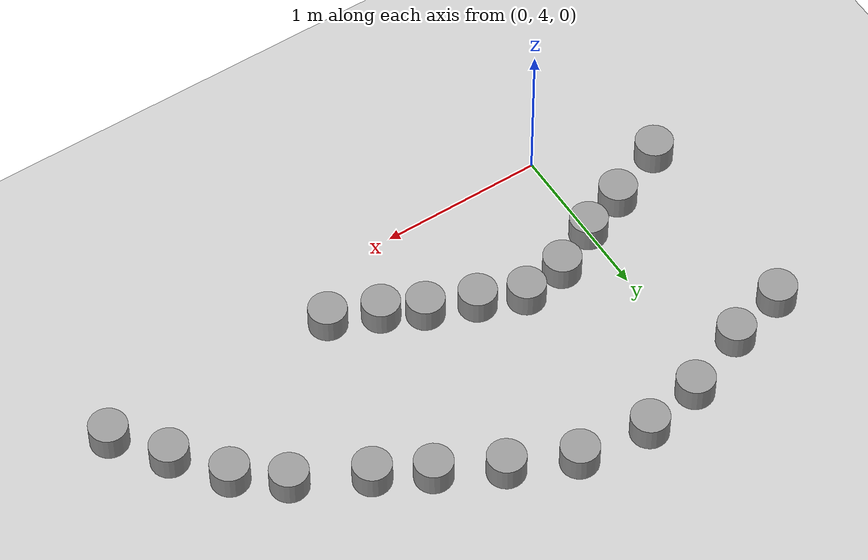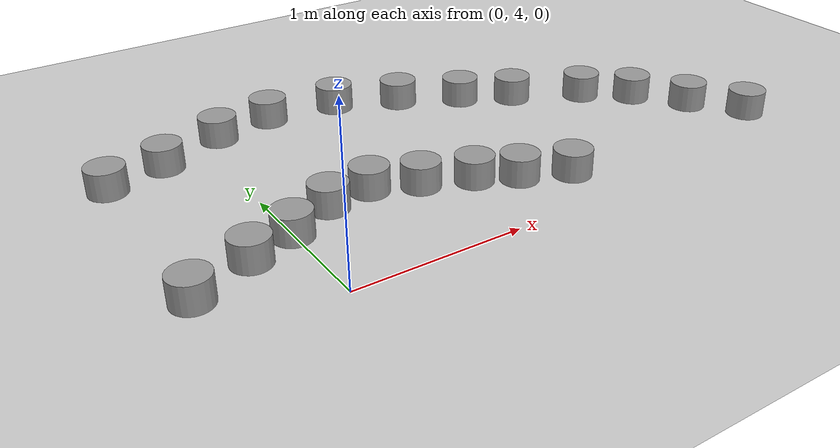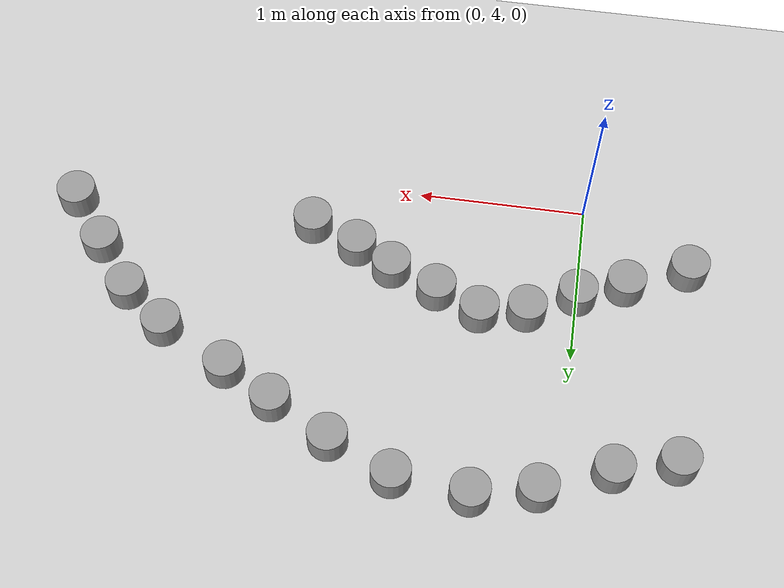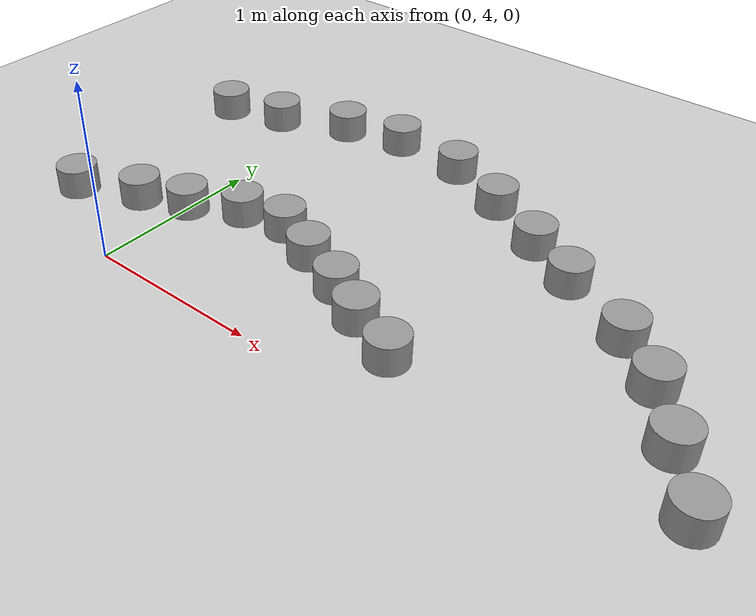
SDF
<sdf version="1.6">
 <world name="default">
  <model name="ground_plane">
   <static>1</static>
   <link name="link">
    <collision name="collision">
     <geometry><plane><normal>0 0 1</normal><size>100 100</size></plane></geometry>
     <surface>
      <contact><collide_bitmask>65535</collide_bitmask></contact>
      <friction><ode><mu>100</mu><mu2>50</mu2></ode></friction>
     </surface>
    </collision>
    <visual name="visual">
     <cast_shadows>0</cast_shadows>
     <geometry><plane><normal>0 0 1</normal><size>100 100</size></plane></geometry>
     <material>
      <script><uri>file://media/materials/scripts/gazebo.material</uri><name>Gazebo/Grey</name></script>
     </material>
    </visual>
   </link>
  </model>
  <model name="pillar_clone_36_clone_4">
   <link name="link_0">
    <inertial>
     <mass>0.0172437</mass>
     <inertia>
      <ixx>0.000207925</ixx>
      <ixy>0</ixy>
      <ixz>0</ixz>
      <iyy>0.000207925</iyy>
      <iyz>0</iyz>
      <izz>0.000114861</izz>
     </inertia>
    </inertial>
    <pose>2e-06 -0 0 0 -0 0</pose>
    <visual name="visual">
     <geometry><cylinder><radius>0.115422</radius><length>0.32362</length></cylinder></geometry>
     <material>
      <lighting>1</lighting>
      <script><uri>file://media/materials/scripts/gazebo.material</uri><name>Gazebo/Grey</name></script>
      <shader type="vertex"><normal_map>__default__</normal_map></shader>
     </material>
    </visual>
    <collision name="collision">
     <geometry><cylinder><radius>0.115422</radius><length>0.32362</length></cylinder></geometry>
     <surface>
      <friction>
       <ode><mu>1</mu><mu2>1</mu2><fdir1>0 0 0</fdir1><slip1>0</slip1><slip2>0</slip2></ode>
       <torsional>
        <coefficient>1</coefficient>
        <patch_radius>0</patch_radius>
        <surface_radius>0</surface_radius>
        <use_patch_radius>1</use_patch_radius>
        <ode><slip>0</slip></ode>
       </torsional>
      </friction>
      <bounce><restitution_coefficient>0</restitution_coefficient><threshold>1e+06</threshold></bounce>
      <contact>
       <collide_without_contact>0</collide_without_contact>
       <collide_without_contact_bitmask>1</collide_without_contact_bitmask>
       <collide_bitmask>1</collide_bitmask>
       <ode>
        <soft_cfm>0</soft_cfm>
        <soft_erp>0.2</soft_erp>
        <kp>1e+13</kp>
        <kd>1</kd>
        <max_vel>0.01</max_vel>
        <min_depth>0</min_depth>
       </ode>
       <bullet>
        <split_impulse>1</split_impulse>
        <split_impulse_penetration_threshold>-0.01</split_impulse_penetration_threshold>
        <soft_cfm>0</soft_cfm>
        <soft_erp>0.2</soft_erp>
        <kp>1e+13</kp>
        <kd>1</kd>
       </bullet>
      </contact>
     </surface>
    </collision>
   </link>
   <static>1</static>
   <pose>0.488108 5.92745 0 0 -0 0</pose>
  </model>
  <model name="pillar_clone_36_clone_5">
   <link name="link_0">
    <inertial>
     <mass>0.0172437</mass>
     <inertia>
      <ixx>0.000207925</ixx>
      <ixy>0</ixy>
      <ixz>0</ixz>
      <iyy>0.000207925</iyy>
      <iyz>0</iyz>
      <izz>0.000114861</izz>
     </inertia>
    </inertial>
    <pose>2e-06 -0 0 0 -0 0</pose>
    <visual name="visual">
     <geometry><cylinder><radius>0.115422</radius><length>0.32362</length></cylinder></geometry>
     <material>
      <lighting>1</lighting>
      <script><uri>file://media/materials/scripts/gazebo.material</uri><name>Gazebo/Grey</name></script>
      <shader type="vertex"><normal_map>__default__</normal_map></shader>
     </material>
    </visual>
    <collision name="collision">
     <geometry><cylinder><radius>0.115422</radius><length>0.32362</length></cylinder></geometry>
     <surface>
      <friction>
       <ode><mu>1</mu><mu2>1</mu2><fdir1>0 0 0</fdir1><slip1>0</slip1><slip2>0</slip2></ode>
       <torsional>
        <coefficient>1</coefficient>
        <patch_radius>0</patch_radius>
        <surface_radius>0</surface_radius>
        <use_patch_radius>1</use_patch_radius>
        <ode><slip>0</slip></ode>
       </torsional>
      </friction>
      <bounce><restitution_coefficient>0</restitution_coefficient><threshold>1e+06</threshold></bounce>
      <contact>
       <collide_without_contact>0</collide_without_contact>
       <collide_without_contact_bitmask>1</collide_without_contact_bitmask>
       <collide_bitmask>1</collide_bitmask>
       <ode>
        <soft_cfm>0</soft_cfm>
        <soft_erp>0.2</soft_erp>
        <kp>1e+13</kp>
        <kd>1</kd>
        <max_vel>0.01</max_vel>
        <min_depth>0</min_depth>
       </ode>
       <bullet>
        <split_impulse>1</split_impulse>
        <split_impulse_penetration_threshold>-0.01</split_impulse_penetration_threshold>
        <soft_cfm>0</soft_cfm>
        <soft_erp>0.2</soft_erp>
        <kp>1e+13</kp>
        <kd>1</kd>
       </bullet>
      </contact>
     </surface>
    </collision>
   </link>
   <static>1</static>
   <pose>0.931547 5.88101 0 0 -0 0</pose>
  </model>
  <model name="pillar_clone_36_clone_6">
   <link name="link_0">
    <inertial>
     <mass>0.0172437</mass>
     <inertia>
      <ixx>0.000207925</ixx>
      <ixy>0</ixy>
      <ixz>0</ixz>
      <iyy>0.000207925</iyy>
      <iyz>0</iyz>
      <izz>0.000114861</izz>
     </inertia>
    </inertial>
    <pose>2e-06 -0 0 0 -0 0</pose>
    <visual name="visual">
     <geometry><cylinder><radius>0.115422</radius><length>0.32362</length></cylinder></geometry>
     <material>
      <lighting>1</lighting>
      <script><uri>file://media/materials/scripts/gazebo.material</uri><name>Gazebo/Grey</name></script>
      <shader type="vertex"><normal_map>__default__</normal_map></shader>
     </material>
    </visual>
    <collision name="collision">
     <geometry><cylinder><radius>0.115422</radius><length>0.32362</length></cylinder></geometry>
     <surface>
      <friction>
       <ode><mu>1</mu><mu2>1</mu2><fdir1>0 0 0</fdir1><slip1>0</slip1><slip2>0</slip2></ode>
       <torsional>
        <coefficient>1</coefficient>
        <patch_radius>0</patch_radius>
        <surface_radius>0</surface_radius>
        <use_patch_radius>1</use_patch_radius>
        <ode><slip>0</slip></ode>
       </torsional>
      </friction>
      <bounce><restitution_coefficient>0</restitution_coefficient><threshold>1e+06</threshold></bounce>
      <contact>
       <collide_without_contact>0</collide_without_contact>
       <collide_without_contact_bitmask>1</collide_without_contact_bitmask>
       <collide_bitmask>1</collide_bitmask>
       <ode>
        <soft_cfm>0</soft_cfm>
        <soft_erp>0.2</soft_erp>
        <kp>1e+13</kp>
        <kd>1</kd>
        <max_vel>0.01</max_vel>
        <min_depth>0</min_depth>
       </ode>
       <bullet>
        <split_impulse>1</split_impulse>
        <split_impulse_penetration_threshold>-0.01</split_impulse_penetration_threshold>
        <soft_cfm>0</soft_cfm>
        <soft_erp>0.2</soft_erp>
        <kp>1e+13</kp>
        <kd>1</kd>
       </bullet>
      </contact>
     </surface>
    </collision>
   </link>
   <static>1</static>
   <pose>1.31132 5.71151 0 0 -0 0</pose>
  </model>
  <model name="pillar_clone_36_clone_7">
   <link name="link_0">
    <inertial>
     <mass>0.0172437</mass>
     <inertia>
      <ixx>0.000207925</ixx>
      <ixy>0</ixy>
      <ixz>0</ixz>
      <iyy>0.000207925</iyy>
      <iyz>0</iyz>
      <izz>0.000114861</izz>
     </inertia>
    </inertial>
    <pose>2e-06 -0 0 0 -0 0</pose>
    <visual name="visual">
     <geometry><cylinder><radius>0.115422</radius><length>0.32362</length></cylinder></geometry>
     <material>
      <lighting>1</lighting>
      <script><uri>file://media/materials/scripts/gazebo.material</uri><name>Gazebo/Grey</name></script>
      <shader type="vertex"><normal_map>__default__</normal_map></shader>
     </material>
    </visual>
    <collision name="collision">
     <geometry><cylinder><radius>0.115422</radius><length>0.32362</length></cylinder></geometry>
     <surface>
      <friction>
       <ode><mu>1</mu><mu2>1</mu2><fdir1>0 0 0</fdir1><slip1>0</slip1><slip2>0</slip2></ode>
       <torsional>
        <coefficient>1</coefficient>
        <patch_radius>0</patch_radius>
        <surface_radius>0</surface_radius>
        <use_patch_radius>1</use_patch_radius>
        <ode><slip>0</slip></ode>
       </torsional>
      </friction>
      <bounce><restitution_coefficient>0</restitution_coefficient><threshold>1e+06</threshold></bounce>
      <contact>
       <collide_without_contact>0</collide_without_contact>
       <collide_without_contact_bitmask>1</collide_without_contact_bitmask>
       <collide_bitmask>1</collide_bitmask>
       <ode>
        <soft_cfm>0</soft_cfm>
        <soft_erp>0.2</soft_erp>
        <kp>1e+13</kp>
        <kd>1</kd>
        <max_vel>0.01</max_vel>
        <min_depth>0</min_depth>
       </ode>
       <bullet>
        <split_impulse>1</split_impulse>
        <split_impulse_penetration_threshold>-0.01</split_impulse_penetration_threshold>
        <soft_cfm>0</soft_cfm>
        <soft_erp>0.2</soft_erp>
        <kp>1e+13</kp>
        <kd>1</kd>
       </bullet>
      </contact>
     </surface>
    </collision>
   </link>
   <static>1</static>
   <pose>1.66938 5.51752 0 0 -0 0</pose>
  </model>
  <model name="pillar_clone_36_clone_8">
   <link name="link_0">
    <inertial>
     <mass>0.0172437</mass>
     <inertia>
      <ixx>0.000207925</ixx>
      <ixy>0</ixy>
      <ixz>0</ixz>
      <iyy>0.000207925</iyy>
      <iyz>0</iyz>
      <izz>0.000114861</izz>
     </inertia>
    </inertial>
    <pose>2e-06 -0 0 0 -0 0</pose>
    <visual name="visual">
     <geometry><cylinder><radius>0.115422</radius><length>0.32362</length></cylinder></geometry>
     <material>
      <lighting>1</lighting>
      <script><uri>file://media/materials/scripts/gazebo.material</uri><name>Gazebo/Grey</name></script>
      <shader type="vertex"><normal_map>__default__</normal_map></shader>
     </material>
    </visual>
    <collision name="collision">
     <geometry><cylinder><radius>0.115422</radius><length>0.32362</length></cylinder></geometry>
     <surface>
      <friction>
       <ode><mu>1</mu><mu2>1</mu2><fdir1>0 0 0</fdir1><slip1>0</slip1><slip2>0</slip2></ode>
       <torsional>
        <coefficient>1</coefficient>
        <patch_radius>0</patch_radius>
        <surface_radius>0</surface_radius>
        <use_patch_radius>1</use_patch_radius>
        <ode><slip>0</slip></ode>
       </torsional>
      </friction>
      <bounce><restitution_coefficient>0</restitution_coefficient><threshold>1e+06</threshold></bounce>
      <contact>
       <collide_without_contact>0</collide_without_contact>
       <collide_without_contact_bitmask>1</collide_without_contact_bitmask>
       <collide_bitmask>1</collide_bitmask>
       <ode>
        <soft_cfm>0</soft_cfm>
        <soft_erp>0.2</soft_erp>
        <kp>1e+13</kp>
        <kd>1</kd>
        <max_vel>0.01</max_vel>
        <min_depth>0</min_depth>
       </ode>
       <bullet>
        <split_impulse>1</split_impulse>
        <split_impulse_penetration_threshold>-0.01</split_impulse_penetration_threshold>
        <soft_cfm>0</soft_cfm>
        <soft_erp>0.2</soft_erp>
        <kp>1e+13</kp>
        <kd>1</kd>
       </bullet>
      </contact>
     </surface>
    </collision>
   </link>
   <static>1</static>
   <pose>1.96808 5.34849 0 0 -0 0</pose>
  </model>
  <model name="pillar_clone_36_clone_9">
   <link name="link_0">
    <inertial>
     <mass>0.0172437</mass>
     <inertia>
      <ixx>0.000207925</ixx>
      <ixy>0</ixy>
      <ixz>0</ixz>
      <iyy>0.000207925</iyy>
      <iyz>0</iyz>
      <izz>0.000114861</izz>
     </inertia>
    </inertial>
    <pose>2e-06 -0 0 0 -0 0</pose>
    <visual name="visual">
     <geometry><cylinder><radius>0.115422</radius><length>0.32362</length></cylinder></geometry>
     <material>
      <lighting>1</lighting>
      <script><uri>file://media/materials/scripts/gazebo.material</uri><name>Gazebo/Grey</name></script>
      <shader type="vertex"><normal_map>__default__</normal_map></shader>
     </material>
    </visual>
    <collision name="collision">
     <geometry><cylinder><radius>0.115422</radius><length>0.32362</length></cylinder></geometry>
     <surface>
      <friction>
       <ode><mu>1</mu><mu2>1</mu2><fdir1>0 0 0</fdir1><slip1>0</slip1><slip2>0</slip2></ode>
       <torsional>
        <coefficient>1</coefficient>
        <patch_radius>0</patch_radius>
        <surface_radius>0</surface_radius>
        <use_patch_radius>1</use_patch_radius>
        <ode><slip>0</slip></ode>
       </torsional>
      </friction>
      <bounce><restitution_coefficient>0</restitution_coefficient><threshold>1e+06</threshold></bounce>
      <contact>
       <collide_without_contact>0</collide_without_contact>
       <collide_without_contact_bitmask>1</collide_without_contact_bitmask>
       <collide_bitmask>1</collide_bitmask>
       <ode>
        <soft_cfm>0</soft_cfm>
        <soft_erp>0.2</soft_erp>
        <kp>1e+13</kp>
        <kd>1</kd>
        <max_vel>0.01</max_vel>
        <min_depth>0</min_depth>
       </ode>
       <bullet>
        <split_impulse>1</split_impulse>
        <split_impulse_penetration_threshold>-0.01</split_impulse_penetration_threshold>
        <soft_cfm>0</soft_cfm>
        <soft_erp>0.2</soft_erp>
        <kp>1e+13</kp>
        <kd>1</kd>
       </bullet>
      </contact>
     </surface>
    </collision>
   </link>
   <static>1</static>
   <pose>2.37694 5.13127 0 0 -0 0</pose>
  </model>
  <model name="pillar_clone_36_clone_10">
   <link name="link_0">
    <inertial>
     <mass>0.0172437</mass>
     <inertia>
      <ixx>0.000207925</ixx>
      <ixy>0</ixy>
      <ixz>0</ixz>
      <iyy>0.000207925</iyy>
      <iyz>0</iyz>
      <izz>0.000114861</izz>
     </inertia>
    </inertial>
    <pose>2e-06 -0 0 0 -0 0</pose>
    <visual name="visual">
     <geometry><cylinder><radius>0.115422</radius><length>0.32362</length></cylinder></geometry>
     <material>
      <lighting>1</lighting>
      <script><uri>file://media/materials/scripts/gazebo.material</uri><name>Gazebo/Grey</name></script>
      <shader type="vertex"><normal_map>__default__</normal_map></shader>
     </material>
    </visual>
    <collision name="collision">
     <geometry><cylinder><radius>0.115422</radius><length>0.32362</length></cylinder></geometry>
     <surface>
      <friction>
       <ode><mu>1</mu><mu2>1</mu2><fdir1>0 0 0</fdir1><slip1>0</slip1><slip2>0</slip2></ode>
       <torsional>
        <coefficient>1</coefficient>
        <patch_radius>0</patch_radius>
        <surface_radius>0</surface_radius>
        <use_patch_radius>1</use_patch_radius>
        <ode><slip>0</slip></ode>
       </torsional>
      </friction>
      <bounce><restitution_coefficient>0</restitution_coefficient><threshold>1e+06</threshold></bounce>
      <contact>
       <collide_without_contact>0</collide_without_contact>
       <collide_without_contact_bitmask>1</collide_without_contact_bitmask>
       <collide_bitmask>1</collide_bitmask>
       <ode>
        <soft_cfm>0</soft_cfm>
        <soft_erp>0.2</soft_erp>
        <kp>1e+13</kp>
        <kd>1</kd>
        <max_vel>0.01</max_vel>
        <min_depth>0</min_depth>
       </ode>
       <bullet>
        <split_impulse>1</split_impulse>
        <split_impulse_penetration_threshold>-0.01</split_impulse_penetration_threshold>
        <soft_cfm>0</soft_cfm>
        <soft_erp>0.2</soft_erp>
        <kp>1e+13</kp>
        <kd>1</kd>
       </bullet>
      </contact>
     </surface>
    </collision>
   </link>
   <static>1</static>
   <pose>2.63432 4.91939 0 0 -0 0</pose>
  </model>
  <model name="pillar_clone_36_clone_11">
   <link name="link_0">
    <inertial>
     <mass>0.0172437</mass>
     <inertia>
      <ixx>0.000207925</ixx>
      <ixy>0</ixy>
      <ixz>0</ixz>
      <iyy>0.000207925</iyy>
      <iyz>0</iyz>
      <izz>0.000114861</izz>
     </inertia>
    </inertial>
    <pose>2e-06 -0 0 0 -0 0</pose>
    <visual name="visual">
     <geometry><cylinder><radius>0.115422</radius><length>0.32362</length></cylinder></geometry>
     <material>
      <lighting>1</lighting>
      <script><uri>file://media/materials/scripts/gazebo.material</uri><name>Gazebo/Grey</name></script>
      <shader type="vertex"><normal_map>__default__</normal_map></shader>
     </material>
    </visual>
    <collision name="collision">
     <geometry><cylinder><radius>0.115422</radius><length>0.32362</length></cylinder></geometry>
     <surface>
      <friction>
       <ode><mu>1</mu><mu2>1</mu2><fdir1>0 0 0</fdir1><slip1>0</slip1><slip2>0</slip2></ode>
       <torsional>
        <coefficient>1</coefficient>
        <patch_radius>0</patch_radius>
        <surface_radius>0</surface_radius>
        <use_patch_radius>1</use_patch_radius>
        <ode><slip>0</slip></ode>
       </torsional>
      </friction>
      <bounce><restitution_coefficient>0</restitution_coefficient><threshold>1e+06</threshold></bounce>
      <contact>
       <collide_without_contact>0</collide_without_contact>
       <collide_without_contact_bitmask>1</collide_without_contact_bitmask>
       <collide_bitmask>1</collide_bitmask>
       <ode>
        <soft_cfm>0</soft_cfm>
        <soft_erp>0.2</soft_erp>
        <kp>1e+13</kp>
        <kd>1</kd>
        <max_vel>0.01</max_vel>
        <min_depth>0</min_depth>
       </ode>
       <bullet>
        <split_impulse>1</split_impulse>
        <split_impulse_penetration_threshold>-0.01</split_impulse_penetration_threshold>
        <soft_cfm>0</soft_cfm>
        <soft_erp>0.2</soft_erp>
        <kp>1e+13</kp>
        <kd>1</kd>
       </bullet>
      </contact>
     </surface>
    </collision>
   </link>
   <static>1</static>
   <pose>2.85406 4.62694 0 0 -0 0</pose>
  </model>
  <model name="pillar_clone_36_clone_12">
   <link name="link_0">
    <inertial>
     <mass>0.0172437</mass>
     <inertia>
      <ixx>0.000207925</ixx>
      <ixy>0</ixy>
      <ixz>0</ixz>
      <iyy>0.000207925</iyy>
      <iyz>0</iyz>
      <izz>0.000114861</izz>
     </inertia>
    </inertial>
    <pose>2e-06 -0 0 0 -0 0</pose>
    <visual name="visual">
     <geometry><cylinder><radius>0.115422</radius><length>0.32362</length></cylinder></geometry>
     <material>
      <lighting>1</lighting>
      <script><uri>file://media/materials/scripts/gazebo.material</uri><name>Gazebo/Grey</name></script>
      <shader type="vertex"><normal_map>__default__</normal_map></shader>
     </material>
    </visual>
    <collision name="collision">
     <geometry><cylinder><radius>0.115422</radius><length>0.32362</length></cylinder></geometry>
     <surface>
      <friction>
       <ode><mu>1</mu><mu2>1</mu2><fdir1>0 0 0</fdir1><slip1>0</slip1><slip2>0</slip2></ode>
       <torsional>
        <coefficient>1</coefficient>
        <patch_radius>0</patch_radius>
        <surface_radius>0</surface_radius>
        <use_patch_radius>1</use_patch_radius>
        <ode><slip>0</slip></ode>
       </torsional>
      </friction>
      <bounce><restitution_coefficient>0</restitution_coefficient><threshold>1e+06</threshold></bounce>
      <contact>
       <collide_without_contact>0</collide_without_contact>
       <collide_without_contact_bitmask>1</collide_without_contact_bitmask>
       <collide_bitmask>1</collide_bitmask>
       <ode>
        <soft_cfm>0</soft_cfm>
        <soft_erp>0.2</soft_erp>
        <kp>1e+13</kp>
        <kd>1</kd>
        <max_vel>0.01</max_vel>
        <min_depth>0</min_depth>
       </ode>
       <bullet>
        <split_impulse>1</split_impulse>
        <split_impulse_penetration_threshold>-0.01</split_impulse_penetration_threshold>
        <soft_cfm>0</soft_cfm>
        <soft_erp>0.2</soft_erp>
        <kp>1e+13</kp>
        <kd>1</kd>
       </bullet>
      </contact>
     </surface>
    </collision>
   </link>
   <static>1</static>
   <pose>3.07184 4.32898 0 0 -0 0</pose>
  </model>
  <model name="pillar_clone_36_clone_18">
   <link name="link_0">
    <inertial>
     <mass>0.0172437</mass>
     <inertia>
      <ixx>0.000207925</ixx>
      <ixy>0</ixy>
      <ixz>0</ixz>
      <iyy>0.000207925</iyy>
      <iyz>0</iyz>
      <izz>0.000114861</izz>
     </inertia>
    </inertial>
    <pose>2e-06 -0 0 0 -0 0</pose>
    <visual name="visual">
     <geometry><cylinder><radius>0.115422</radius><length>0.32362</length></cylinder></geometry>
     <material>
      <lighting>1</lighting>
      <script><uri>file://media/materials/scripts/gazebo.material</uri><name>Gazebo/Grey</name></script>
      <shader type="vertex"><normal_map>__default__</normal_map></shader>
     </material>
    </visual>
    <collision name="collision">
     <geometry><cylinder><radius>0.115422</radius><length>0.32362</length></cylinder></geometry>
     <surface>
      <friction>
       <ode><mu>1</mu><mu2>1</mu2><fdir1>0 0 0</fdir1><slip1>0</slip1><slip2>0</slip2></ode>
       <torsional>
        <coefficient>1</coefficient>
        <patch_radius>0</patch_radius>
        <surface_radius>0</surface_radius>
        <use_patch_radius>1</use_patch_radius>
        <ode><slip>0</slip></ode>
       </torsional>
      </friction>
      <bounce><restitution_coefficient>0</restitution_coefficient><threshold>1e+06</threshold></bounce>
      <contact>
       <collide_without_contact>0</collide_without_contact>
       <collide_without_contact_bitmask>1</collide_without_contact_bitmask>
       <collide_bitmask>1</collide_bitmask>
       <ode>
        <soft_cfm>0</soft_cfm>
        <soft_erp>0.2</soft_erp>
        <kp>1e+13</kp>
        <kd>1</kd>
        <max_vel>0.01</max_vel>
        <min_depth>0</min_depth>
       </ode>
       <bullet>
        <split_impulse>1</split_impulse>
        <split_impulse_penetration_threshold>-0.01</split_impulse_penetration_threshold>
        <soft_cfm>0</soft_cfm>
        <soft_erp>0.2</soft_erp>
        <kp>1e+13</kp>
        <kd>1</kd>
       </bullet>
      </contact>
     </surface>
    </collision>
   </link>
   <static>1</static>
   <pose>-0.640386 5.58485 0 0 -0 0</pose>
  </model>
  <model name="pillar_clone_36_clone_19">
   <link name="link_0">
    <inertial>
     <mass>0.0172437</mass>
     <inertia>
      <ixx>0.000207925</ixx>
      <ixy>0</ixy>
      <ixz>0</ixz>
      <iyy>0.000207925</iyy>
      <iyz>0</iyz>
      <izz>0.000114861</izz>
     </inertia>
    </inertial>
    <pose>2e-06 -0 0 0 -0 0</pose>
    <visual name="visual">
     <geometry><cylinder><radius>0.115422</radius><length>0.32362</length></cylinder></geometry>
     <material>
      <lighting>1</lighting>
      <script><uri>file://media/materials/scripts/gazebo.material</uri><name>Gazebo/Grey</name></script>
      <shader type="vertex"><normal_map>__default__</normal_map></shader>
     </material>
    </visual>
    <collision name="collision">
     <geometry><cylinder><radius>0.115422</radius><length>0.32362</length></cylinder></geometry>
     <surface>
      <friction>
       <ode><mu>1</mu><mu2>1</mu2><fdir1>0 0 0</fdir1><slip1>0</slip1><slip2>0</slip2></ode>
       <torsional>
        <coefficient>1</coefficient>
        <patch_radius>0</patch_radius>
        <surface_radius>0</surface_radius>
        <use_patch_radius>1</use_patch_radius>
        <ode><slip>0</slip></ode>
       </torsional>
      </friction>
      <bounce><restitution_coefficient>0</restitution_coefficient><threshold>1e+06</threshold></bounce>
      <contact>
       <collide_without_contact>0</collide_without_contact>
       <collide_without_contact_bitmask>1</collide_without_contact_bitmask>
       <collide_bitmask>1</collide_bitmask>
       <ode>
        <soft_cfm>0</soft_cfm>
        <soft_erp>0.2</soft_erp>
        <kp>1e+13</kp>
        <kd>1</kd>
        <max_vel>0.01</max_vel>
        <min_depth>0</min_depth>
       </ode>
       <bullet>
        <split_impulse>1</split_impulse>
        <split_impulse_penetration_threshold>-0.01</split_impulse_penetration_threshold>
        <soft_cfm>0</soft_cfm>
        <soft_erp>0.2</soft_erp>
        <kp>1e+13</kp>
        <kd>1</kd>
       </bullet>
      </contact>
     </surface>
    </collision>
   </link>
   <static>1</static>
   <pose>-0.281741 5.68035 0 0 -0 0</pose>
  </model>
  <model name="pillar_clone_36_clone_20">
   <link name="link_0">
    <inertial>
     <mass>0.0172437</mass>
     <inertia>
      <ixx>0.000207925</ixx>
      <ixy>0</ixy>
      <ixz>0</ixz>
      <iyy>0.000207925</iyy>
      <iyz>0</iyz>
      <izz>0.000114861</izz>
     </inertia>
    </inertial>
    <pose>2e-06 -0 0 0 -0 0</pose>
    <visual name="visual">
     <geometry><cylinder><radius>0.115422</radius><length>0.32362</length></cylinder></geometry>
     <material>
      <lighting>1</lighting>
      <script><uri>file://media/materials/scripts/gazebo.material</uri><name>Gazebo/Grey</name></script>
      <shader type="vertex"><normal_map>__default__</normal_map></shader>
     </material>
    </visual>
    <collision name="collision">
     <geometry><cylinder><radius>0.115422</radius><length>0.32362</length></cylinder></geometry>
     <surface>
      <friction>
       <ode><mu>1</mu><mu2>1</mu2><fdir1>0 0 0</fdir1><slip1>0</slip1><slip2>0</slip2></ode>
       <torsional>
        <coefficient>1</coefficient>
        <patch_radius>0</patch_radius>
        <surface_radius>0</surface_radius>
        <use_patch_radius>1</use_patch_radius>
        <ode><slip>0</slip></ode>
       </torsional>
      </friction>
      <bounce><restitution_coefficient>0</restitution_coefficient><threshold>1e+06</threshold></bounce>
      <contact>
       <collide_without_contact>0</collide_without_contact>
       <collide_without_contact_bitmask>1</collide_without_contact_bitmask>
       <collide_bitmask>1</collide_bitmask>
       <ode>
        <soft_cfm>0</soft_cfm>
        <soft_erp>0.2</soft_erp>
        <kp>1e+13</kp>
        <kd>1</kd>
        <max_vel>0.01</max_vel>
        <min_depth>0</min_depth>
       </ode>
       <bullet>
        <split_impulse>1</split_impulse>
        <split_impulse_penetration_threshold>-0.01</split_impulse_penetration_threshold>
        <soft_cfm>0</soft_cfm>
        <soft_erp>0.2</soft_erp>
        <kp>1e+13</kp>
        <kd>1</kd>
       </bullet>
      </contact>
     </surface>
    </collision>
   </link>
   <static>1</static>
   <pose>0.121023 5.85063 0 0 -0 0</pose>
  </model>
  <model name="pillar_clone_36_clone_24">
   <link name="link_0">
    <inertial>
     <mass>0.0172437</mass>
     <inertia>
      <ixx>0.000207925</ixx>
      <ixy>0</ixy>
      <ixz>0</ixz>
      <iyy>0.000207925</iyy>
      <iyz>0</iyz>
      <izz>0.000114861</izz>
     </inertia>
    </inertial>
    <pose>2e-06 -0 0 0 -0 0</pose>
    <visual name="visual">
     <geometry><cylinder><radius>0.115422</radius><length>0.32362</length></cylinder></geometry>
     <material>
      <lighting>1</lighting>
      <script><uri>file://media/materials/scripts/gazebo.material</uri><name>Gazebo/Grey</name></script>
      <shader type="vertex"><normal_map>__default__</normal_map></shader>
     </material>
    </visual>
    <collision name="collision">
     <geometry><cylinder><radius>0.115422</radius><length>0.32362</length></cylinder></geometry>
     <surface>
      <friction>
       <ode><mu>1</mu><mu2>1</mu2><fdir1>0 0 0</fdir1><slip1>0</slip1><slip2>0</slip2></ode>
       <torsional>
        <coefficient>1</coefficient>
        <patch_radius>0</patch_radius>
        <surface_radius>0</surface_radius>
        <use_patch_radius>1</use_patch_radius>
        <ode><slip>0</slip></ode>
       </torsional>
      </friction>
      <bounce><restitution_coefficient>0</restitution_coefficient><threshold>1e+06</threshold></bounce>
      <contact>
       <collide_without_contact>0</collide_without_contact>
       <collide_without_contact_bitmask>1</collide_without_contact_bitmask>
       <collide_bitmask>1</collide_bitmask>
       <ode>
        <soft_cfm>0</soft_cfm>
        <soft_erp>0.2</soft_erp>
        <kp>1e+13</kp>
        <kd>1</kd>
        <max_vel>0.01</max_vel>
        <min_depth>0</min_depth>
       </ode>
       <bullet>
        <split_impulse>1</split_impulse>
        <split_impulse_penetration_threshold>-0.01</split_impulse_penetration_threshold>
        <soft_cfm>0</soft_cfm>
        <soft_erp>0.2</soft_erp>
        <kp>1e+13</kp>
        <kd>1</kd>
       </bullet>
      </contact>
     </surface>
    </collision>
   </link>
   <static>1</static>
   <pose>0.560838 4.78633 0 0 -0 0</pose>
  </model>
  <model name="pillar_clone_36_clone_68">
   <link name="link_0">
    <inertial>
     <mass>0.0172437</mass>
     <inertia>
      <ixx>0.000207925</ixx>
      <ixy>0</ixy>
      <ixz>0</ixz>
      <iyy>0.000207925</iyy>
      <iyz>0</iyz>
      <izz>0.000114861</izz>
     </inertia>
    </inertial>
    <pose>2e-06 -0 0 0 -0 0</pose>
    <visual name="visual">
     <geometry><cylinder><radius>0.115422</radius><length>0.32362</length></cylinder></geometry>
     <material>
      <lighting>1</lighting>
      <script><uri>file://media/materials/scripts/gazebo.material</uri><name>Gazebo/Grey</name></script>
      <shader type="vertex"><normal_map>__default__</normal_map></shader>
     </material>
    </visual>
    <collision name="collision">
     <geometry><cylinder><radius>0.115422</radius><length>0.32362</length></cylinder></geometry>
     <surface>
      <friction>
       <ode><mu>1</mu><mu2>1</mu2><fdir1>0 0 0</fdir1><slip1>0</slip1><slip2>0</slip2></ode>
       <torsional>
        <coefficient>1</coefficient>
        <patch_radius>0</patch_radius>
        <surface_radius>0</surface_radius>
        <use_patch_radius>1</use_patch_radius>
        <ode><slip>0</slip></ode>
       </torsional>
      </friction>
      <bounce><restitution_coefficient>0</restitution_coefficient><threshold>1e+06</threshold></bounce>
      <contact>
       <collide_without_contact>0</collide_without_contact>
       <collide_without_contact_bitmask>1</collide_without_contact_bitmask>
       <collide_bitmask>1</collide_bitmask>
       <ode>
        <soft_cfm>0</soft_cfm>
        <soft_erp>0.2</soft_erp>
        <kp>1e+13</kp>
        <kd>1</kd>
        <max_vel>0.01</max_vel>
        <min_depth>0</min_depth>
       </ode>
       <bullet>
        <split_impulse>1</split_impulse>
        <split_impulse_penetration_threshold>-0.01</split_impulse_penetration_threshold>
        <soft_cfm>0</soft_cfm>
        <soft_erp>0.2</soft_erp>
        <kp>1e+13</kp>
        <kd>1</kd>
       </bullet>
      </contact>
     </surface>
    </collision>
   </link>
   <static>1</static>
   <pose>0.284743 4.74203 0 0 -0 0</pose>
  </model>
  <model name="pillar_clone_36_clone_69">
   <link name="link_0">
    <inertial>
     <mass>0.0172437</mass>
     <inertia>
      <ixx>0.000207925</ixx>
      <ixy>0</ixy>
      <ixz>0</ixz>
      <iyy>0.000207925</iyy>
      <iyz>0</iyz>
      <izz>0.000114861</izz>
     </inertia>
    </inertial>
    <pose>2e-06 -0 0 0 -0 0</pose>
    <visual name="visual">
     <geometry><cylinder><radius>0.115422</radius><length>0.32362</length></cylinder></geometry>
     <material>
      <lighting>1</lighting>
      <script><uri>file://media/materials/scripts/gazebo.material</uri><name>Gazebo/Grey</name></script>
      <shader type="vertex"><normal_map>__default__</normal_map></shader>
     </material>
    </visual>
    <collision name="collision">
     <geometry><cylinder><radius>0.115422</radius><length>0.32362</length></cylinder></geometry>
     <surface>
      <friction>
       <ode><mu>1</mu><mu2>1</mu2><fdir1>0 0 0</fdir1><slip1>0</slip1><slip2>0</slip2></ode>
       <torsional>
        <coefficient>1</coefficient>
        <patch_radius>0</patch_radius>
        <surface_radius>0</surface_radius>
        <use_patch_radius>1</use_patch_radius>
        <ode><slip>0</slip></ode>
       </torsional>
      </friction>
      <bounce><restitution_coefficient>0</restitution_coefficient><threshold>1e+06</threshold></bounce>
      <contact>
       <collide_without_contact>0</collide_without_contact>
       <collide_without_contact_bitmask>1</collide_without_contact_bitmask>
       <collide_bitmask>1</collide_bitmask>
       <ode>
        <soft_cfm>0</soft_cfm>
        <soft_erp>0.2</soft_erp>
        <kp>1e+13</kp>
        <kd>1</kd>
        <max_vel>0.01</max_vel>
        <min_depth>0</min_depth>
       </ode>
       <bullet>
        <split_impulse>1</split_impulse>
        <split_impulse_penetration_threshold>-0.01</split_impulse_penetration_threshold>
        <soft_cfm>0</soft_cfm>
        <soft_erp>0.2</soft_erp>
        <kp>1e+13</kp>
        <kd>1</kd>
       </bullet>
      </contact>
     </surface>
    </collision>
   </link>
   <static>1</static>
   <pose>0 4.59571 0 0 -0 0</pose>
  </model>
  <model name="pillar_clone_36_clone_70">
   <link name="link_0">
    <inertial>
     <mass>0.0172437</mass>
     <inertia>
      <ixx>0.000207925</ixx>
      <ixy>0</ixy>
      <ixz>0</ixz>
      <iyy>0.000207925</iyy>
      <iyz>0</iyz>
      <izz>0.000114861</izz>
     </inertia>
    </inertial>
    <pose>2e-06 -0 0 0 -0 0</pose>
    <visual name="visual">
     <geometry><cylinder><radius>0.115422</radius><length>0.32362</length></cylinder></geometry>
     <material>
      <lighting>1</lighting>
      <script><uri>file://media/materials/scripts/gazebo.material</uri><name>Gazebo/Grey</name></script>
      <shader type="vertex"><normal_map>__default__</normal_map></shader>
     </material>
    </visual>
    <collision name="collision">
     <geometry><cylinder><radius>0.115422</radius><length>0.32362</length></cylinder></geometry>
     <surface>
      <friction>
       <ode><mu>1</mu><mu2>1</mu2><fdir1>0 0 0</fdir1><slip1>0</slip1><slip2>0</slip2></ode>
       <torsional>
        <coefficient>1</coefficient>
        <patch_radius>0</patch_radius>
        <surface_radius>0</surface_radius>
        <use_patch_radius>1</use_patch_radius>
        <ode><slip>0</slip></ode>
       </torsional>
      </friction>
      <bounce><restitution_coefficient>0</restitution_coefficient><threshold>1e+06</threshold></bounce>
      <contact>
       <collide_without_contact>0</collide_without_contact>
       <collide_without_contact_bitmask>1</collide_without_contact_bitmask>
       <collide_bitmask>1</collide_bitmask>
       <ode>
        <soft_cfm>0</soft_cfm>
        <soft_erp>0.2</soft_erp>
        <kp>1e+13</kp>
        <kd>1</kd>
        <max_vel>0.01</max_vel>
        <min_depth>0</min_depth>
       </ode>
       <bullet>
        <split_impulse>1</split_impulse>
        <split_impulse_penetration_threshold>-0.01</split_impulse_penetration_threshold>
        <soft_cfm>0</soft_cfm>
        <soft_erp>0.2</soft_erp>
        <kp>1e+13</kp>
        <kd>1</kd>
       </bullet>
      </contact>
     </surface>
    </collision>
   </link>
   <static>1</static>
   <pose>-0.27758 4.49239 0 0 -0 0</pose>
  </model>
  <model name="pillar_clone_36_clone_71">
   <link name="link_0">
    <inertial>
     <mass>0.0172437</mass>
     <inertia>
      <ixx>0.000207925</ixx>
      <ixy>0</ixy>
      <ixz>0</ixz>
      <iyy>0.000207925</iyy>
      <iyz>0</iyz>
      <izz>0.000114861</izz>
     </inertia>
    </inertial>
    <pose>2e-06 -0 0 0 -0 0</pose>
    <visual name="visual">
     <geometry><cylinder><radius>0.115422</radius><length>0.32362</length></cylinder></geometry>
     <material>
      <lighting>1</lighting>
      <script><uri>file://media/materials/scripts/gazebo.material</uri><name>Gazebo/Grey</name></script>
      <shader type="vertex"><normal_map>__default__</normal_map></shader>
     </material>
    </visual>
    <collision name="collision">
     <geometry><cylinder><radius>0.115422</radius><length>0.32362</length></cylinder></geometry>
     <surface>
      <friction>
       <ode><mu>1</mu><mu2>1</mu2><fdir1>0 0 0</fdir1><slip1>0</slip1><slip2>0</slip2></ode>
       <torsional>
        <coefficient>1</coefficient>
        <patch_radius>0</patch_radius>
        <surface_radius>0</surface_radius>
        <use_patch_radius>1</use_patch_radius>
        <ode><slip>0</slip></ode>
       </torsional>
      </friction>
      <bounce><restitution_coefficient>0</restitution_coefficient><threshold>1e+06</threshold></bounce>
      <contact>
       <collide_without_contact>0</collide_without_contact>
       <collide_without_contact_bitmask>1</collide_without_contact_bitmask>
       <collide_bitmask>1</collide_bitmask>
       <ode>
        <soft_cfm>0</soft_cfm>
        <soft_erp>0.2</soft_erp>
        <kp>1e+13</kp>
        <kd>1</kd>
        <max_vel>0.01</max_vel>
        <min_depth>0</min_depth>
       </ode>
       <bullet>
        <split_impulse>1</split_impulse>
        <split_impulse_penetration_threshold>-0.01</split_impulse_penetration_threshold>
        <soft_cfm>0</soft_cfm>
        <soft_erp>0.2</soft_erp>
        <kp>1e+13</kp>
        <kd>1</kd>
       </bullet>
      </contact>
     </surface>
    </collision>
   </link>
   <static>1</static>
   <pose>-0.641515 4.33875 0 0 -0 0</pose>
  </model>
  <model name="pillar_clone_36_clone_72">
   <link name="link_0">
    <inertial>
     <mass>0.0172437</mass>
     <inertia>
      <ixx>0.000207925</ixx>
      <ixy>0</ixy>
      <ixz>0</ixz>
      <iyy>0.000207925</iyy>
      <iyz>0</iyz>
      <izz>0.000114861</izz>
     </inertia>
    </inertial>
    <pose>2e-06 -0 0 0 -0 0</pose>
    <visual name="visual">
     <geometry><cylinder><radius>0.115422</radius><length>0.32362</length></cylinder></geometry>
     <material>
      <lighting>1</lighting>
      <script><uri>file://media/materials/scripts/gazebo.material</uri><name>Gazebo/Grey</name></script>
      <shader type="vertex"><normal_map>__default__</normal_map></shader>
     </material>
    </visual>
    <collision name="collision">
     <geometry><cylinder><radius>0.115422</radius><length>0.32362</length></cylinder></geometry>
     <surface>
      <friction>
       <ode><mu>1</mu><mu2>1</mu2><fdir1>0 0 0</fdir1><slip1>0</slip1><slip2>0</slip2></ode>
       <torsional>
        <coefficient>1</coefficient>
        <patch_radius>0</patch_radius>
        <surface_radius>0</surface_radius>
        <use_patch_radius>1</use_patch_radius>
        <ode><slip>0</slip></ode>
       </torsional>
      </friction>
      <bounce><restitution_coefficient>0</restitution_coefficient><threshold>1e+06</threshold></bounce>
      <contact>
       <collide_without_contact>0</collide_without_contact>
       <collide_without_contact_bitmask>1</collide_without_contact_bitmask>
       <collide_bitmask>1</collide_bitmask>
       <ode>
        <soft_cfm>0</soft_cfm>
        <soft_erp>0.2</soft_erp>
        <kp>1e+13</kp>
        <kd>1</kd>
        <max_vel>0.01</max_vel>
        <min_depth>0</min_depth>
       </ode>
       <bullet>
        <split_impulse>1</split_impulse>
        <split_impulse_penetration_threshold>-0.01</split_impulse_penetration_threshold>
        <soft_cfm>0</soft_cfm>
        <soft_erp>0.2</soft_erp>
        <kp>1e+13</kp>
        <kd>1</kd>
       </bullet>
      </contact>
     </surface>
    </collision>
   </link>
   <static>1</static>
   <pose>0.825712 4.67532 0 0 -0 0</pose>
  </model>
  <model name="pillar_clone_36_clone_73">
   <link name="link_0">
    <inertial>
     <mass>0.0172437</mass>
     <inertia>
      <ixx>0.000207925</ixx>
      <ixy>0</ixy>
      <ixz>0</ixz>
      <iyy>0.000207925</iyy>
      <iyz>0</iyz>
      <izz>0.000114861</izz>
     </inertia>
    </inertial>
    <pose>2e-06 -0 0 0 -0 0</pose>
    <visual name="visual">
     <geometry><cylinder><radius>0.115422</radius><length>0.32362</length></cylinder></geometry>
     <material>
      <lighting>1</lighting>
      <script><uri>file://media/materials/scripts/gazebo.material</uri><name>Gazebo/Grey</name></script>
      <shader type="vertex"><normal_map>__default__</normal_map></shader>
     </material>
    </visual>
    <collision name="collision">
     <geometry><cylinder><radius>0.115422</radius><length>0.32362</length></cylinder></geometry>
     <surface>
      <friction>
       <ode><mu>1</mu><mu2>1</mu2><fdir1>0 0 0</fdir1><slip1>0</slip1><slip2>0</slip2></ode>
       <torsional>
        <coefficient>1</coefficient>
        <patch_radius>0</patch_radius>
        <surface_radius>0</surface_radius>
        <use_patch_radius>1</use_patch_radius>
        <ode><slip>0</slip></ode>
       </torsional>
      </friction>
      <bounce><restitution_coefficient>0</restitution_coefficient><threshold>1e+06</threshold></bounce>
      <contact>
       <collide_without_contact>0</collide_without_contact>
       <collide_without_contact_bitmask>1</collide_without_contact_bitmask>
       <collide_bitmask>1</collide_bitmask>
       <ode>
        <soft_cfm>0</soft_cfm>
        <soft_erp>0.2</soft_erp>
        <kp>1e+13</kp>
        <kd>1</kd>
        <max_vel>0.01</max_vel>
        <min_depth>0</min_depth>
       </ode>
       <bullet>
        <split_impulse>1</split_impulse>
        <split_impulse_penetration_threshold>-0.01</split_impulse_penetration_threshold>
        <soft_cfm>0</soft_cfm>
        <soft_erp>0.2</soft_erp>
        <kp>1e+13</kp>
        <kd>1</kd>
       </bullet>
      </contact>
     </surface>
    </collision>
   </link>
   <static>1</static>
   <pose>1.10862 4.55998 0 0 -0 0</pose>
  </model>
  <model name="pillar_clone_36_clone_75">
   <link name="link_0">
    <inertial>
     <mass>0.0172437</mass>
     <inertia>
      <ixx>0.000207925</ixx>
      <ixy>0</ixy>
      <ixz>0</ixz>
      <iyy>0.000207925</iyy>
      <iyz>0</iyz>
      <izz>0.000114861</izz>
     </inertia>
    </inertial>
    <pose>2e-06 -0 0 0 -0 0</pose>
    <visual name="visual">
     <geometry><cylinder><radius>0.115422</radius><length>0.32362</length></cylinder></geometry>
     <material>
      <lighting>1</lighting>
      <script><uri>file://media/materials/scripts/gazebo.material</uri><name>Gazebo/Grey</name></script>
      <shader type="vertex"><normal_map>__default__</normal_map></shader>
     </material>
    </visual>
    <collision name="collision">
     <geometry><cylinder><radius>0.115422</radius><length>0.32362</length></cylinder></geometry>
     <surface>
      <friction>
       <ode><mu>1</mu><mu2>1</mu2><fdir1>0 0 0</fdir1><slip1>0</slip1><slip2>0</slip2></ode>
       <torsional>
        <coefficient>1</coefficient>
        <patch_radius>0</patch_radius>
        <surface_radius>0</surface_radius>
        <use_patch_radius>1</use_patch_radius>
        <ode><slip>0</slip></ode>
       </torsional>
      </friction>
      <bounce><restitution_coefficient>0</restitution_coefficient><threshold>1e+06</threshold></bounce>
      <contact>
       <collide_without_contact>0</collide_without_contact>
       <collide_without_contact_bitmask>1</collide_without_contact_bitmask>
       <collide_bitmask>1</collide_bitmask>
       <ode>
        <soft_cfm>0</soft_cfm>
        <soft_erp>0.2</soft_erp>
        <kp>1e+13</kp>
        <kd>1</kd>
        <max_vel>0.01</max_vel>
        <min_depth>0</min_depth>
       </ode>
       <bullet>
        <split_impulse>1</split_impulse>
        <split_impulse_penetration_threshold>-0.01</split_impulse_penetration_threshold>
        <soft_cfm>0</soft_cfm>
        <soft_erp>0.2</soft_erp>
        <kp>1e+13</kp>
        <kd>1</kd>
       </bullet>
      </contact>
     </surface>
    </collision>
   </link>
   <static>1</static>
   <pose>1.61797 4.3163 0 0 -0 0</pose>
  </model>
  <model name="pillar_clone_36_clone_76">
   <link name="link_0">
    <inertial>
     <mass>0.0172437</mass>
     <inertia>
      <ixx>0.000207925</ixx>
      <ixy>0</ixy>
      <ixz>0</ixz>
      <iyy>0.000207925</iyy>
      <iyz>0</iyz>
      <izz>0.000114861</izz>
     </inertia>
    </inertial>
    <pose>2e-06 -0 0 0 -0 0</pose>
    <visual name="visual">
     <geometry><cylinder><radius>0.115422</radius><length>0.32362</length></cylinder></geometry>
     <material>
      <lighting>1</lighting>
      <script><uri>file://media/materials/scripts/gazebo.material</uri><name>Gazebo/Grey</name></script>
      <shader type="vertex"><normal_map>__default__</normal_map></shader>
     </material>
    </visual>
    <collision name="collision">
     <geometry><cylinder><radius>0.115422</radius><length>0.32362</length></cylinder></geometry>
     <surface>
      <friction>
       <ode><mu>1</mu><mu2>1</mu2><fdir1>0 0 0</fdir1><slip1>0</slip1><slip2>0</slip2></ode>
       <torsional>
        <coefficient>1</coefficient>
        <patch_radius>0</patch_radius>
        <surface_radius>0</surface_radius>
        <use_patch_radius>1</use_patch_radius>
        <ode><slip>0</slip></ode>
       </torsional>
      </friction>
      <bounce><restitution_coefficient>0</restitution_coefficient><threshold>1e+06</threshold></bounce>
      <contact>
       <collide_without_contact>0</collide_without_contact>
       <collide_without_contact_bitmask>1</collide_without_contact_bitmask>
       <collide_bitmask>1</collide_bitmask>
       <ode>
        <soft_cfm>0</soft_cfm>
        <soft_erp>0.2</soft_erp>
        <kp>1e+13</kp>
        <kd>1</kd>
        <max_vel>0.01</max_vel>
        <min_depth>0</min_depth>
       </ode>
       <bullet>
        <split_impulse>1</split_impulse>
        <split_impulse_penetration_threshold>-0.01</split_impulse_penetration_threshold>
        <soft_cfm>0</soft_cfm>
        <soft_erp>0.2</soft_erp>
        <kp>1e+13</kp>
        <kd>1</kd>
       </bullet>
      </contact>
     </surface>
    </collision>
   </link>
   <static>1</static>
   <pose>1.33397 4.43793 0 0 -0 0</pose>
  </model>
 </world>
</sdf>
